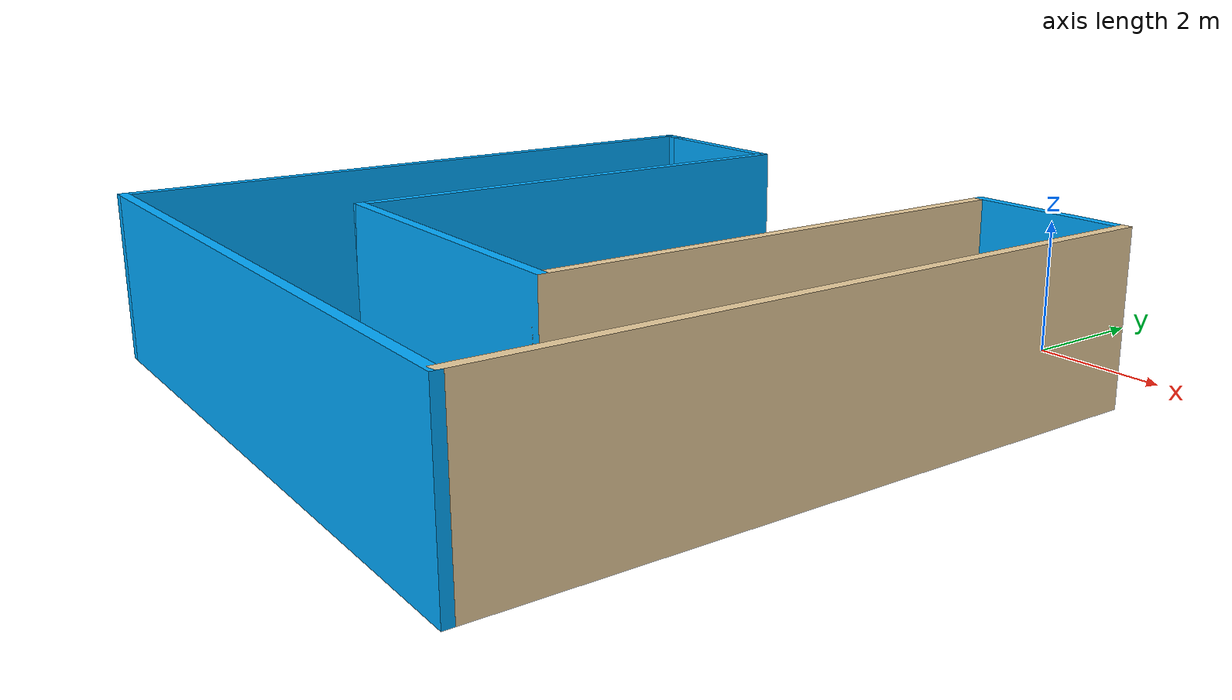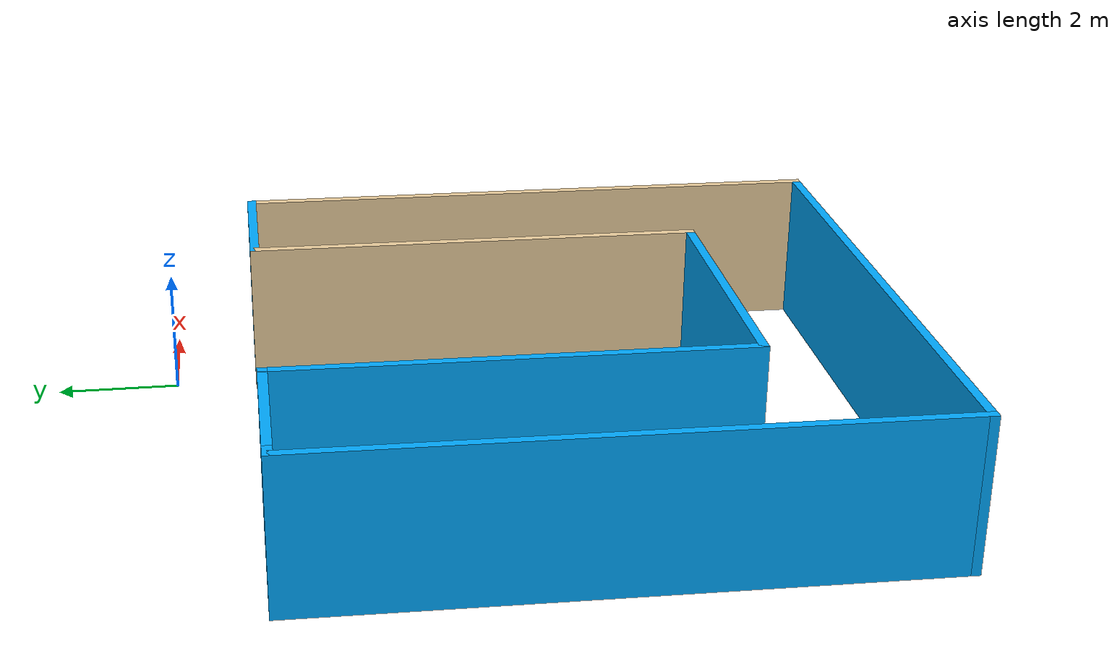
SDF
<?xml version='1.0'?>
<sdf version='1.6'>
  <model name='my_world'>
    <pose frame=''>-2.75132 -6.32703 0 0 -0 0</pose>
    <link name='Wall_0'>
      <collision name='Wall_0_Collision'>
        <geometry>
          <box>
            <size>2.5 0.15 2.5</size>
          </box>
        </geometry>
        <pose frame=''>0 0 1.25 0 -0 0</pose>
      </collision>
      <visual name='Wall_0_Visual'>
        <pose frame=''>0 0 1.25 0 -0 0</pose>
        <geometry>
          <box>
            <size>2.5 0.15 2.5</size>
          </box>
        </geometry>
        <material>
          <script>
            <uri>file://media/materials/scripts/gazebo.material</uri>
            <name>Gazebo/Grey</name>
          </script>
          <ambient>0 0.666667 1 1</ambient>
        </material>
        <meta>
          <layer>0</layer>
        </meta>
      </visual>
      <pose frame=''>-3.45 4.925 0 0 -0 0</pose>
    </link>
    <link name='Wall_1'>
      <collision name='Wall_1_Collision'>
        <geometry>
          <box>
            <size>7.5 0.15 2.5</size>
          </box>
        </geometry>
        <pose frame=''>0 0 1.25 0 -0 0</pose>
      </collision>
      <visual name='Wall_1_Visual'>
        <pose frame=''>0 0 1.25 0 -0 0</pose>
        <geometry>
          <box>
            <size>7.5 0.15 2.5</size>
          </box>
        </geometry>
        <material>
          <script>
            <uri>file://media/materials/scripts/gazebo.material</uri>
            <name>Gazebo/Grey</name>
          </script>
          <ambient>0 0.666667 1 1</ambient>
        </material>
        <meta>
          <layer>0</layer>
        </meta>
      </visual>
      <pose frame=''>-2.275 1.25 0 0 0 -1.5708</pose>
    </link>
    <link name='Wall_2'>
      <collision name='Wall_2_Collision'>
        <geometry>
          <box>
            <size>5 0.15 2.5</size>
          </box>
        </geometry>
        <pose frame=''>0 0 1.25 0 -0 0</pose>
      </collision>
      <visual name='Wall_2_Visual'>
        <pose frame=''>0 0 1.25 0 -0 0</pose>
        <geometry>
          <box>
            <size>5 0.15 2.5</size>
          </box>
        </geometry>
        <material>
          <script>
            <uri>file://media/materials/scripts/gazebo.material</uri>
            <name>Gazebo/Grey</name>
          </script>
          <ambient>0 0.666667 1 1</ambient>
        </material>
        <meta>
          <layer>0</layer>
        </meta>
      </visual>
      <pose frame=''>0.15 -2.425 0 0 -0 0</pose>
    </link>
    <link name='Wall_3'>
      <collision name='Wall_3_Collision'>
        <geometry>
          <box>
            <size>7.5 0.15 2.5</size>
          </box>
        </geometry>
        <pose frame=''>0 0 1.25 0 -0 0</pose>
      </collision>
      <visual name='Wall_3_Visual'>
        <pose frame=''>0 0 1.25 0 -0 0</pose>
        <geometry>
          <box>
            <size>7.5 0.15 2.5</size>
          </box>
        </geometry>
        <material>
          <script>
            <uri>file://media/materials/scripts/gazebo.material</uri>
            <name>Gazebo/Grey</name>
          </script>
          <ambient>0.921569 0.807843 0.615686 1</ambient>
        </material>
        <meta>
          <layer>0</layer>
        </meta>
      </visual>
      <pose frame=''>2.575 1.25 0 0 -0 1.5708</pose>
    </link>
    <link name='Wall_4'>
      <collision name='Wall_4_Collision'>
        <geometry>
          <box>
            <size>2.5 0.15 2.5</size>
          </box>
        </geometry>
        <pose frame=''>0 0 1.25 0 -0 0</pose>
      </collision>
      <visual name='Wall_4_Visual'>
        <pose frame=''>0 0 1.25 0 -0 0</pose>
        <geometry>
          <box>
            <size>2.5 0.15 2.5</size>
          </box>
        </geometry>
        <material>
          <script>
            <uri>file://media/materials/scripts/gazebo.material</uri>
            <name>Gazebo/Grey</name>
          </script>
          <ambient>0 0.666667 1 1</ambient>
        </material>
        <meta>
          <layer>0</layer>
        </meta>
      </visual>
      <pose frame=''>3.75 4.925 0 0 -0 0</pose>
    </link>
    <link name='Wall_5'>
      <collision name='Wall_5_Collision'>
        <geometry>
          <box>
            <size>10 0.15 2.5</size>
          </box>
        </geometry>
        <pose frame=''>0 0 1.25 0 -0 0</pose>
      </collision>
      <visual name='Wall_5_Visual'>
        <pose frame=''>0 0 1.25 0 -0 0</pose>
        <geometry>
          <box>
            <size>10 0.15 2.5</size>
          </box>
        </geometry>
        <material>
          <script>
            <uri>file://media/materials/scripts/gazebo.material</uri>
            <name>Gazebo/Grey</name>
          </script>
          <ambient>0.921569 0.807843 0.615686 1</ambient>
        </material>
        <meta>
          <layer>0</layer>
        </meta>
      </visual>
      <pose frame=''>4.925 0 0 0 0 -1.5708</pose>
    </link>
    <link name='Wall_6'>
      <collision name='Wall_6_Collision'>
        <geometry>
          <box>
            <size>10 0.15 2.5</size>
          </box>
        </geometry>
        <pose frame=''>0 0 1.25 0 -0 0</pose>
      </collision>
      <visual name='Wall_6_Visual'>
        <pose frame=''>0 0 1.25 0 -0 0</pose>
        <geometry>
          <box>
            <size>10 0.15 2.5</size>
          </box>
        </geometry>
        <material>
          <script>
            <uri>file://media/materials/scripts/gazebo.material</uri>
            <name>Gazebo/Grey</name>
          </script>
          <ambient>0 0.666667 1 1</ambient>
        </material>
        <meta>
          <layer>0</layer>
        </meta>
      </visual>
      <pose frame=''>0 -4.925 0 0 -0 3.14159</pose>
    </link>
    <link name='Wall_7'>
      <collision name='Wall_7_Collision'>
        <geometry>
          <box>
            <size>10 0.15 2.5</size>
          </box>
        </geometry>
        <pose frame=''>0 0 1.25 0 -0 0</pose>
      </collision>
      <visual name='Wall_7_Visual'>
        <pose frame=''>0 0 1.25 0 -0 0</pose>
        <geometry>
          <box>
            <size>10 0.15 2.5</size>
          </box>
        </geometry>
        <material>
          <script>
            <uri>file://media/materials/scripts/gazebo.material</uri>
            <name>Gazebo/Grey</name>
          </script>
          <ambient>0 0.666667 1 1</ambient>
        </material>
        <meta>
          <layer>0</layer>
        </meta>
      </visual>
      <pose frame=''>-4.925 0 0 0 -0 1.5708</pose>
    </link>
    <link name='Wall_8'>
      <collision name='Wall_8_Collision'>
        <geometry>
          <box>
            <size>0.45 0.15 2.5</size>
          </box>
        </geometry>
        <pose frame=''>0 0 1.25 0 -0 0</pose>
      </collision>
      <visual name='Wall_8_Visual'>
        <pose frame=''>0 0 1.25 0 -0 0</pose>
        <geometry>
          <box>
            <size>0.45 0.15 2.5</size>
          </box>
        </geometry>
        <material>
          <script>
            <uri>file://media/materials/scripts/gazebo.material</uri>
            <name>Gazebo/Grey</name>
          </script>
          <ambient>0 0.666667 1 1</ambient>
        </material>
        <meta>
          <layer>0</layer>
        </meta>
      </visual>
      <pose frame=''>-4.775 4.925 0 0 -0 0</pose>
    </link>
    <static>1</static>
  </model>
</sdf>
